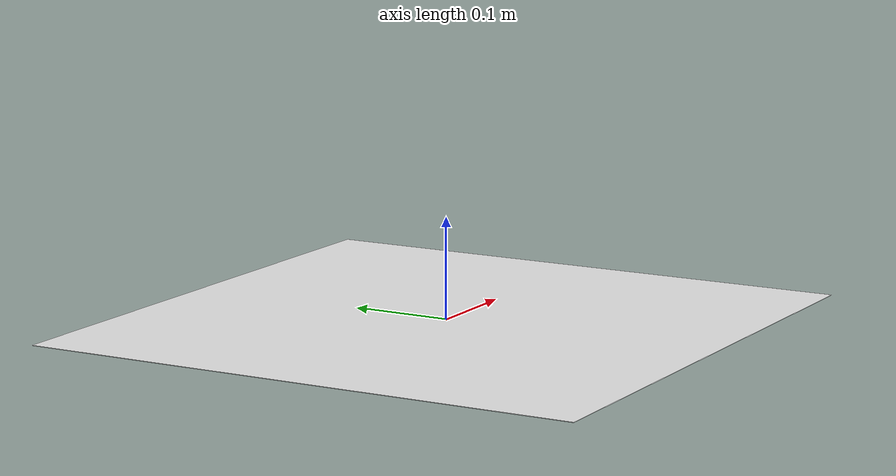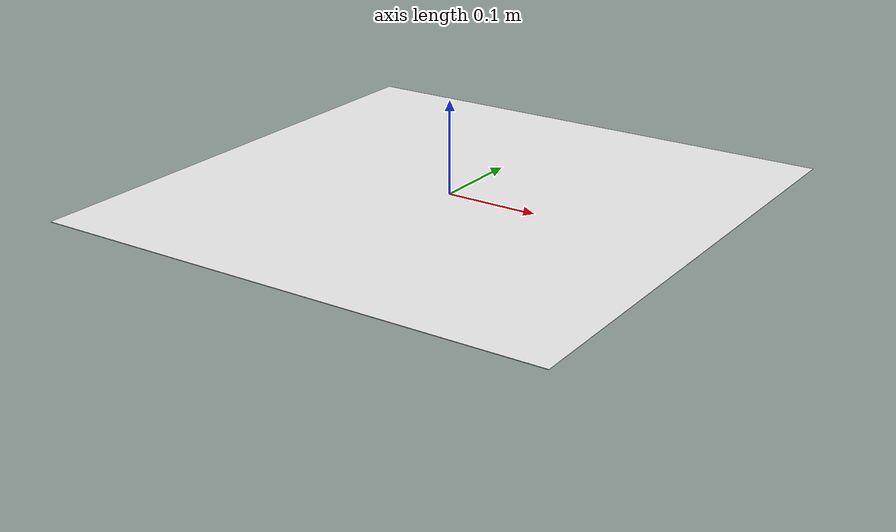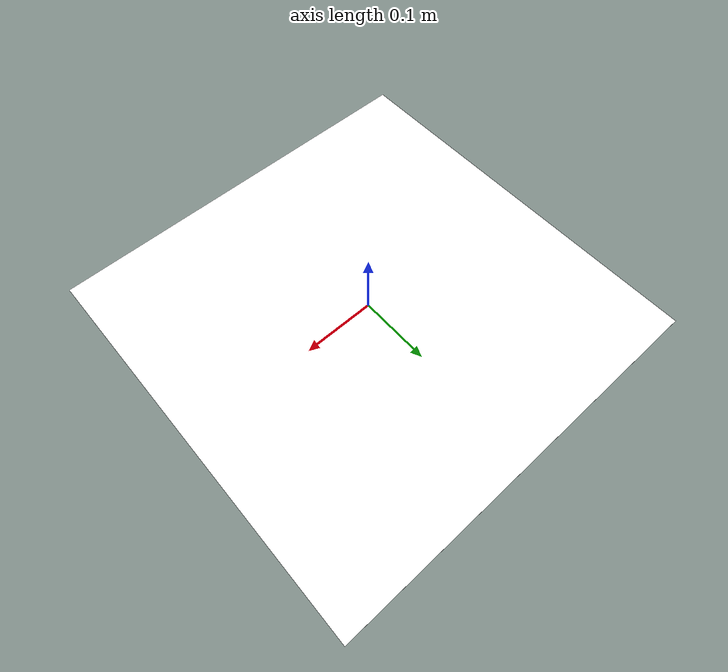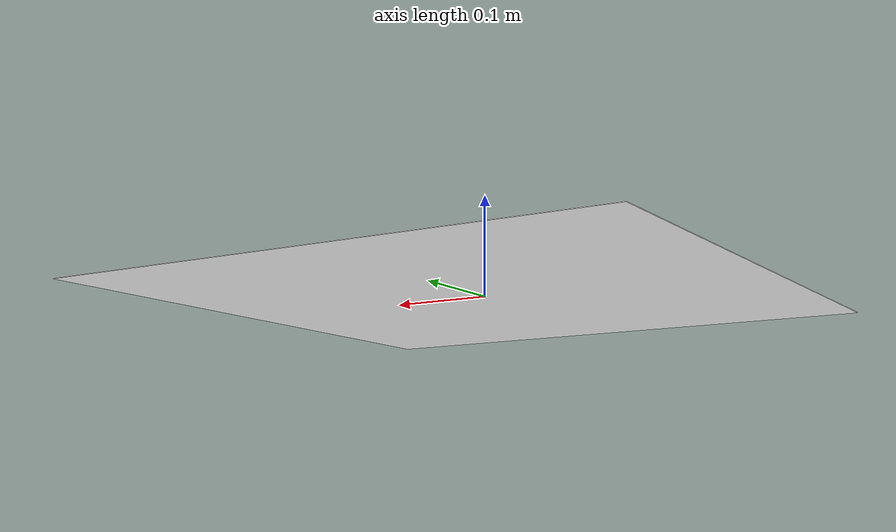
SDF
<?xml version="1.0" ?>
<sdf version="1.10">
  <model name="apriltag_40">
    <static>true</static>
    <pose>0 0 0 0 0 0</pose>
    <link name="link">
      <visual name="visual">
        <cast_shadows>false</cast_shadows>
        <geometry>
          <plane>
            <normal>0 0 1</normal>
            <size>0.5625 0.5625</size> <!--Remember to add the margin equation size = (size_0(9))/8 with size_0 = 0.5-->
          </plane>
        </geometry>
        <material>
          <ambient>1 1 1 1</ambient>
          <diffuse>1 1 1 1</diffuse>
          <specular>0 0 0 1</specular>
          <pbr>
            <metal>
              <albedo_map>model://apriltag_40/materials/textures/AprilTag-tag36h11-ID40.png</albedo_map>
              <metalness>0</metalness>
              <roughness>1</roughness>
            </metal>
          </pbr>
        </material>
      </visual>
    </link>
  </model>
</sdf>
